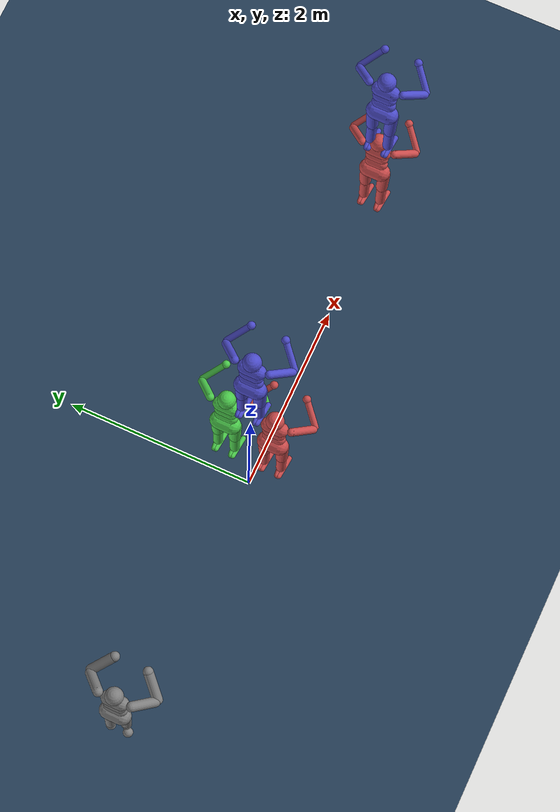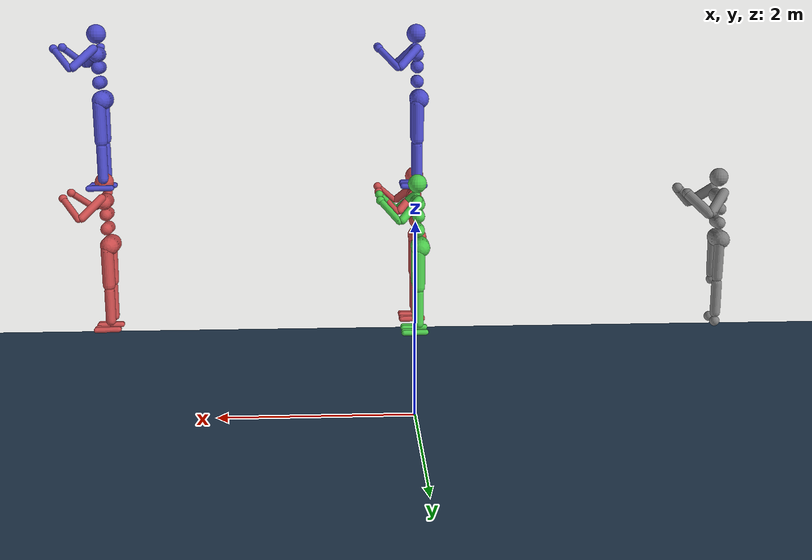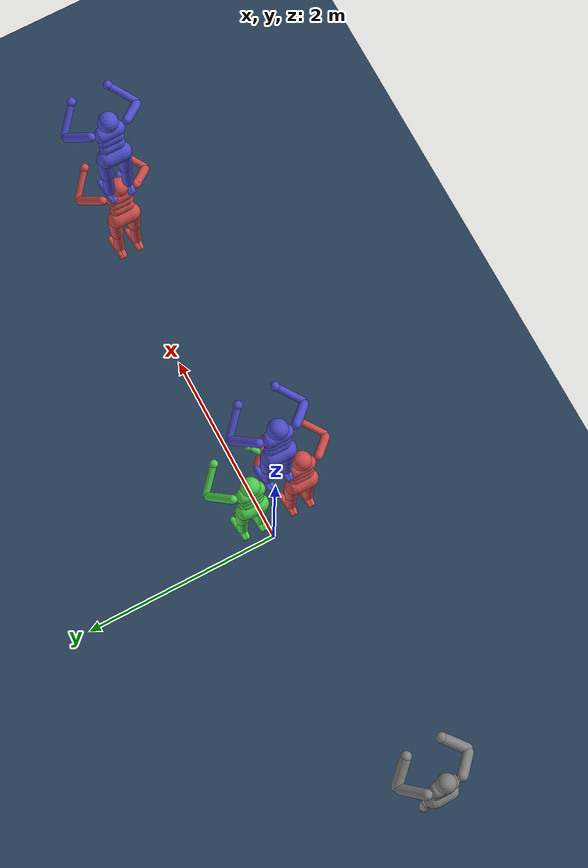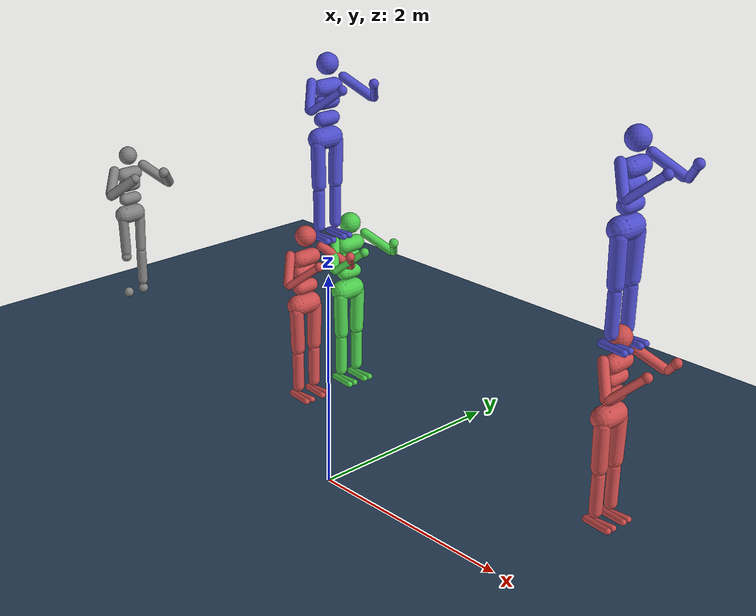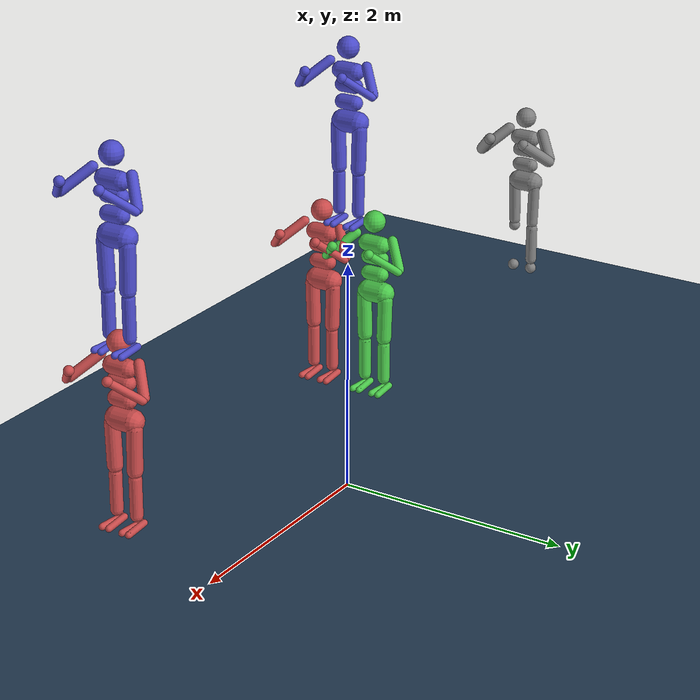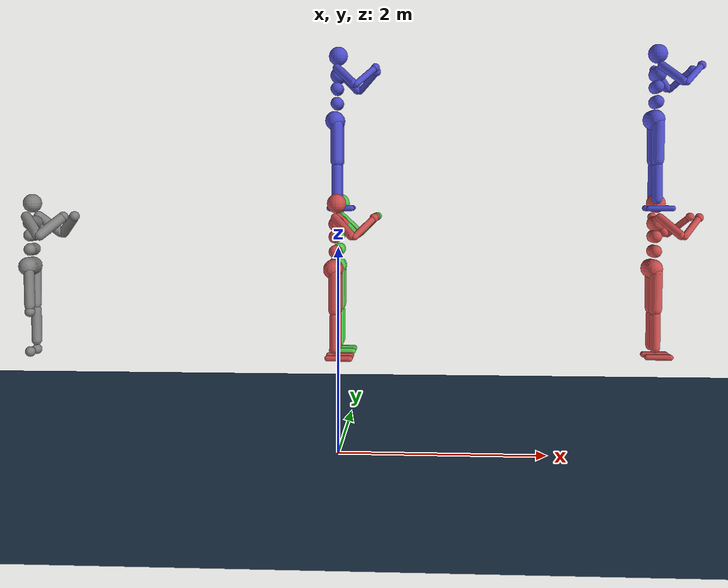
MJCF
<?xml version='1.0' encoding='utf-8'?>
<mujoco model="All_Models_Combined_Auto_Generated"><compiler angle="radian" eulerseq="xyz" /><option timestep="0.005" impratio="1" /><asset><texture type="skybox" builtin="gradient" rgb1=".3 .5 .7" rgb2="0 0 0" width="32" height="512" /><texture name="grid" type="2d" builtin="checker" width="512" height="512" rgb1=".1 .2 .3" rgb2=".2 .3 .4" /><material name="grid" texture="grid" texrepeat="1 1" texuniform="true" reflectance=".2" /><material name="red" rgba="0.8 0.3 0.3 1" /><material name="green" rgba="0.3 0.8 0.3 1" /><material name="blue" rgba="0.3 0.3 0.8 1" /><material name="pointer" rgba="0.8 0.8 0.1 1" /><material name="default_material" rgba="0.7 0.7 0.7 1" /></asset><worldbody><light pos="0 0 1.5" dir="0 0 -1" /><geom name="main_floor" type="plane" size="50 50 0.1" material="grid" condim="3" /><body name="humanoid_mount" pos="-3.0 0 0.95"><body name="humanoid_torso" pos="0 0 1.282">
      <light name="top" pos="0 0 2" mode="trackcom" />
      <camera name="back" pos="-3 0 1" xyaxes="0 -1 0 1 0 2" mode="trackcom" />
      <camera name="side" pos="0 -3 1" xyaxes="1 0 0 0 1 2" mode="trackcom" />
      <freejoint name="root" />
      <geom name="torso" fromto="0 -.07 0 0 .07 0" size=".07" type="capsule" />
      <geom name="waist_upper" fromto="-.01 -.06 -.12 -.01 .06 -.12" size=".06" type="capsule" />
      <body name="head" pos="0 0 .19">
        <geom name="head" type="sphere" size=".09" />
        <camera name="egocentric" pos=".09 0 0" xyaxes="0 -1 0 .1 0 1" fovy="80" />
      </body>
      <body name="waist_lower" pos="-.01 0 -.26">
        <geom name="waist_lower" fromto="0 -.06 0 0 .06 0" size=".06" type="capsule" />
        <joint name="abdomen_z" pos="0 0 .065" axis="0 0 1" range="-45 45" />
        <joint name="abdomen_y" pos="0 0 .065" axis="0 1 0" range="-75 30" />
        <body name="pelvis" pos="0 0 -.165">
          <joint name="abdomen_x" pos="0 0 .1" axis="1 0 0" range="-35 35" />
          <geom name="butt" fromto="-.02 -.07 0 -.02 .07 0" size=".09" type="capsule" />
          <body name="thigh_right" pos="0 -.1 -.04">
            <joint name="hip_x_right" axis="1 0 0" />
            <joint name="hip_z_right" axis="0 0 1" />
            <joint name="hip_y_right" />
            <geom name="thigh_right" fromto="0 0 0 0 .01 -.34" type="capsule" size="0.05" />
            <body name="shin_right" pos="0 .01 -.4">
              <joint name="knee_right" />
              <geom name="shin_right" size="0.05" />
              <body name="foot_right" pos="0 0 -.39">
                <joint name="ankle_y_right" />
                <joint name="ankle_x_right" axis="1 0 .5" />
                <geom name="foot1_right" size="0.05" />
                <geom name="foot2_right" size="0.05" />
              </body>
            </body>
          </body>
          <body name="thigh_left" pos="0 .1 -.04">
            <joint name="hip_x_left" axis="-1 0 0" />
            <joint name="hip_z_left" axis="0 0 -1" />
            <joint name="hip_y_left" />
            <geom name="thigh_left" fromto="0 0 0 0 -.01 -.34" type="capsule" size="0.05" />
            <body name="shin_left" pos="0 -.01 -.4">
              <joint name="knee_left" />
              <geom name="shin_left" fromto="0 0 0 0 0 -.3" type="capsule" size="0.05" />
              <body name="foot_left" pos="0 0 -.39">
                <joint name="ankle_y_left" />
                <joint name="ankle_x_left" axis="-1 0 -.5" />
                <geom name="foot1_left" size="0.05" />
                <geom name="foot2_left" size="0.05" />
              </body>
            </body>
          </body>
        </body>
      </body>
      <body name="upper_arm_right" pos="0 -.17 .06">
        <joint name="shoulder1_right" axis="2 1 1" />
        <joint name="shoulder2_right" axis="0 -1 1" />
        <geom name="upper_arm_right" fromto="0 0 0 .16 -.16 -.16" type="capsule" size="0.05" />
        <body name="lower_arm_right" pos=".18 -.18 -.18">
          <joint name="elbow_right" axis="0 -1 1" />
          <geom name="lower_arm_right" fromto=".01 .01 .01 .17 .17 .17" type="capsule" size="0.05" />
          <body name="hand_right" pos=".18 .18 .18">
            <geom name="hand_right" zaxis="1 1 1" size="0.05" />
          </body>
        </body>
      </body>
      <body name="upper_arm_left" pos="0 .17 .06">
        <joint name="shoulder1_left" axis="-2 1 -1" />
        <joint name="shoulder2_left" axis="0 -1 -1" />
        <geom name="upper_arm_left" fromto="0 0 0 .16 .16 -.16" type="capsule" size="0.05" />
        <body name="lower_arm_left" pos=".18 .18 -.18">
          <joint name="elbow_left" axis="0 -1 -1" />
          <geom name="lower_arm_left" fromto=".01 -.01 .01 .17 -.17 .17" type="capsule" size="0.05" />
          <body name="hand_left" pos=".18 -.18 .18">
            <geom name="hand_left" zaxis="1 -1 1" size="0.05" />
          </body>
        </body>
      </body>
    </body>
  </body><body name="humanoid_pyramid_mount" pos="0.0 0 0.95"><body name="humanoid_pyramid_bot1" pos="0 -0.25 1">
      <freejoint name="bot1_root" />
      <body name="bot1_torso" pos="0 0 0.282">
        <geom name="bot1_torso" fromto="0 -.07 0 0 .07 0" size=".07" type="capsule" material="red" />
        <geom name="bot1_waist_upper" fromto="-.01 -.06 -.12 -.01 .06 -.12" size=".06" type="capsule" material="red" />

        <body name="bot1_head" pos="0 0 .19">
          <geom name="bot1_head" type="sphere" size=".09" material="red" />
        </body>

        <body name="bot1_upper_arm_right" pos="0 -.17 .06">
          <joint name="bot1_shoulder1_right" type="hinge" axis="2 1 1" range="-85 60" />
          <joint name="bot1_shoulder2_right" type="hinge" axis="0 -1 1" range="-85 60" />
          <geom name="bot1_upper_arm_right" fromto="0 0 0 .16 -.16 -.16" size=".04" type="capsule" material="red" />
          <body name="bot1_lower_arm_right" pos=".18 -.18 -.18">
            <joint name="bot1_elbow_right" type="hinge" axis="0 -1 1" range="-100 50" />
            <geom name="bot1_lower_arm_right" fromto=".01 .01 .01 .17 .17 .17" size=".031" type="capsule" material="red" />
            <body name="bot1_hand_right" pos=".18 .18 .18">
              <geom name="bot1_hand_right" type="sphere" size=".04" material="red" />
            </body>
          </body>
        </body>

        <body name="bot1_upper_arm_left" pos="0 .17 .06">
          <joint name="bot1_shoulder1_left" type="hinge" axis="-2 1 -1" range="-85 60" />
          <joint name="bot1_shoulder2_left" type="hinge" axis="0 -1 -1" range="-85 60" />
          <geom name="bot1_upper_arm_left" fromto="0 0 0 .16 .16 -.16" size=".04" type="capsule" material="red" />
          <body name="bot1_lower_arm_left" pos=".18 .18 -.18">
            <joint name="bot1_elbow_left" type="hinge" axis="0 -1 -1" range="-100 50" />
            <geom name="bot1_lower_arm_left" fromto=".01 -.01 .01 .17 -.17 .17" size=".031" type="capsule" material="red" />
            <body name="bot1_hand_left" pos=".18 -.18 .18">
              <geom name="bot1_hand_left" type="sphere" size=".04" material="red" />
            </body>
          </body>
        </body>

        <body name="bot1_waist_lower" pos="-.01 0 -.26">
          <geom name="bot1_waist_lower" fromto="0 -.06 0 0 .06 0" size=".06" type="capsule" material="red" />
          <joint name="bot1_abdomen_z" pos="0 0 .065" axis="0 0 1" range="-45 45" />
          <joint name="bot1_abdomen_y" pos="0 0 .065" axis="0 1 0" range="-75 30" />
          <body name="bot1_pelvis" pos="0 0 -.165">
            <joint name="bot1_abdomen_x" pos="0 0 .1" axis="1 0 0" range="-35 35" />
            <geom name="bot1_butt" fromto="-.02 -.07 0 -.02 .07 0" size=".09" type="capsule" material="red" />

            <body name="bot1_thigh_right" pos="0 -.1 -.04">
              <joint name="bot1_hip_x_right" type="hinge" axis="1 0 0" range="-30 10" />
              <joint name="bot1_hip_z_right" type="hinge" axis="0 0 1" range="-60 35" />
              <joint name="bot1_hip_y_right" type="hinge" axis="0 1 0" range="-150 20" />
              <geom name="bot1_thigh_right" fromto="0 0 0 0 .01 -.34" size=".06" type="capsule" material="red" />
              <body name="bot1_shin_right" pos="0 .01 -.4">
                <joint name="bot1_knee_right" type="hinge" axis="0 -1 0" range="-160 2" />
                <geom name="bot1_shin_right" fromto="0 0 0 0 0 -.3" size=".049" type="capsule" material="red" />
                <body name="bot1_foot_right" pos="0 0 -.39">
                  <joint name="bot1_ankle_y_right" type="hinge" pos="0 0 .08" axis="0 1 0" range="-50 50" />
                  <joint name="bot1_ankle_x_right" type="hinge" pos="0 0 .04" axis="1 0 .5" range="-50 50" />
                  <geom name="bot1_foot1_right" fromto="-.07 -.01 0 .14 -.03 0" size=".027" type="capsule" material="red" />
                  <geom name="bot1_foot2_right" fromto="-.07 .01 0 .14 .03 0" size=".027" type="capsule" material="red" />
                </body>
              </body>
            </body>

            <body name="bot1_thigh_left" pos="0 .1 -.04">
              <joint name="bot1_hip_x_left" type="hinge" axis="-1 0 0" range="-30 10" />
              <joint name="bot1_hip_z_left" type="hinge" axis="0 0 -1" range="-60 35" />
              <joint name="bot1_hip_y_left" type="hinge" axis="0 1 0" range="-150 20" />
              <geom name="bot1_thigh_left" fromto="0 0 0 0 -.01 -.34" size=".06" type="capsule" material="red" />
              <body name="bot1_shin_left" pos="0 -.01 -.4">
                <joint name="bot1_knee_left" type="hinge" axis="0 -1 0" range="-160 2" />
                <geom name="bot1_shin_left" fromto="0 0 0 0 0 -.3" size=".049" type="capsule" material="red" />
                <body name="bot1_foot_left" pos="0 0 -.39">
                  <joint name="bot1_ankle_y_left" type="hinge" pos="0 0 .08" axis="0 1 0" range="-50 50" />
                  <joint name="bot1_ankle_x_left" type="hinge" pos="0 0 .04" axis="-1 0 -.5" range="-50 50" />
                  <geom name="bot1_foot1_left" fromto="-.07 -.01 0 .14 -.03 0" size=".027" type="capsule" material="red" />
                  <geom name="bot1_foot2_left" fromto="-.07 .01 0 .14 .03 0" size=".027" type="capsule" material="red" />
                </body>
              </body>
            </body>
          </body>
        </body>
      </body>
    </body>

    <body name="humanoid_pyramid_bot2" pos="0 0.25 1">
      <freejoint name="bot2_root" />
      <body name="bot2_torso" pos="0 0 0.282">
        <geom name="bot2_torso" fromto="0 -.07 0 0 .07 0" size=".07" type="capsule" material="green" />
        <geom name="bot2_waist_upper" fromto="-.01 -.06 -.12 -.01 .06 -.12" size=".06" type="capsule" material="green" />

        <body name="bot2_head" pos="0 0 .19">
          <geom name="bot2_head" type="sphere" size=".09" material="green" />
        </body>

        <body name="bot2_upper_arm_right" pos="0 -.17 .06">
          <joint name="bot2_shoulder1_right" type="hinge" axis="2 1 1" range="-85 60" />
          <joint name="bot2_shoulder2_right" type="hinge" axis="0 -1 1" range="-85 60" />
          <geom name="bot2_upper_arm_right" fromto="0 0 0 .16 -.16 -.16" size=".04" type="capsule" material="green" />
          <body name="bot2_lower_arm_right" pos=".18 -.18 -.18">
            <joint name="bot2_elbow_right" type="hinge" axis="0 -1 1" range="-100 50" />
            <geom name="bot2_lower_arm_right" fromto=".01 .01 .01 .17 .17 .17" size=".031" type="capsule" material="green" />
            <body name="bot2_hand_right" pos=".18 .18 .18">
              <geom name="bot2_hand_right" type="sphere" size=".04" material="green" />
            </body>
          </body>
        </body>

        <body name="bot2_upper_arm_left" pos="0 .17 .06">
          <joint name="bot2_shoulder1_left" type="hinge" axis="-2 1 -1" range="-85 60" />
          <joint name="bot2_shoulder2_left" type="hinge" axis="0 -1 -1" range="-85 60" />
          <geom name="bot2_upper_arm_left" fromto="0 0 0 .16 .16 -.16" size=".04" type="capsule" material="green" />
          <body name="bot2_lower_arm_left" pos=".18 .18 -.18">
            <joint name="bot2_elbow_left" type="hinge" axis="0 -1 -1" range="-100 50" />
            <geom name="bot2_lower_arm_left" fromto=".01 -.01 .01 .17 -.17 .17" size=".031" type="capsule" material="green" />
            <body name="bot2_hand_left" pos=".18 -.18 .18">
              <geom name="bot2_hand_left" type="sphere" size=".04" material="green" />
            </body>
          </body>
        </body>

        <body name="bot2_waist_lower" pos="-.01 0 -.26">
          <geom name="bot2_waist_lower" fromto="0 -.06 0 0 .06 0" size=".06" type="capsule" material="green" />
          <joint name="bot2_abdomen_z" pos="0 0 .065" axis="0 0 1" range="-45 45" />
          <joint name="bot2_abdomen_y" pos="0 0 .065" axis="0 1 0" range="-75 30" />
          <body name="bot2_pelvis" pos="0 0 -.165">
            <joint name="bot2_abdomen_x" pos="0 0 .1" axis="1 0 0" range="-35 35" />
            <geom name="bot2_butt" fromto="-.02 -.07 0 -.02 .07 0" size=".09" type="capsule" material="green" />

            <body name="bot2_thigh_right" pos="0 -.1 -.04">
              <joint name="bot2_hip_x_right" type="hinge" axis="1 0 0" range="-30 10" />
              <joint name="bot2_hip_z_right" type="hinge" axis="0 0 1" range="-60 35" />
              <joint name="bot2_hip_y_right" type="hinge" axis="0 1 0" range="-150 20" />
              <geom name="bot2_thigh_right" fromto="0 0 0 0 .01 -.34" size=".06" type="capsule" material="green" />
              <body name="bot2_shin_right" pos="0 .01 -.4">
                <joint name="bot2_knee_right" type="hinge" axis="0 -1 0" range="-160 2" />
                <geom name="bot2_shin_right" fromto="0 0 0 0 0 -.3" size=".049" type="capsule" material="green" />
                <body name="bot2_foot_right" pos="0 0 -.39">
                  <joint name="bot2_ankle_y_right" type="hinge" pos="0 0 .08" axis="0 1 0" range="-50 50" />
                  <joint name="bot2_ankle_x_right" type="hinge" pos="0 0 .04" axis="1 0 .5" range="-50 50" />
                  <geom name="bot2_foot1_right" fromto="-.07 -.01 0 .14 -.03 0" size=".027" type="capsule" material="green" />
                  <geom name="bot2_foot2_right" fromto="-.07 .01 0 .14 .03 0" size=".027" type="capsule" material="green" />
                </body>
              </body>
            </body>

            <body name="bot2_thigh_left" pos="0 .1 -.04">
              <joint name="bot2_hip_x_left" type="hinge" axis="-1 0 0" range="-30 10" />
              <joint name="bot2_hip_z_left" type="hinge" axis="0 0 -1" range="-60 35" />
              <joint name="bot2_hip_y_left" type="hinge" axis="0 1 0" range="-150 20" />
              <geom name="bot2_thigh_left" fromto="0 0 0 0 -.01 -.34" size=".06" type="capsule" material="green" />
              <body name="bot2_shin_left" pos="0 -.01 -.4">
                <joint name="bot2_knee_left" type="hinge" axis="0 -1 0" range="-160 2" />
                <geom name="bot2_shin_left" fromto="0 0 0 0 0 -.3" size=".049" type="capsule" material="green" />
                <body name="bot2_foot_left" pos="0 0 -.39">
                  <joint name="bot2_ankle_y_left" type="hinge" pos="0 0 .08" axis="0 1 0" range="-50 50" />
                  <joint name="bot2_ankle_x_left" type="hinge" pos="0 0 .04" axis="-1 0 -.5" range="-50 50" />
                  <geom name="bot2_foot1_left" fromto="-.07 -.01 0 .14 -.03 0" size=".027" type="capsule" material="green" />
                  <geom name="bot2_foot2_left" fromto="-.07 .01 0 .14 .03 0" size=".027" type="capsule" material="green" />
                </body>
              </body>
            </body>
          </body>
        </body>
      </body>
    </body>

    <body name="humanoid_pyramid_top" pos="0 0 2.4">
      <freejoint name="top_root" />
      <body name="top_torso" pos="0 0 0.282">
        <geom name="top_torso" fromto="0 -.07 0 0 .07 0" size=".07" type="capsule" material="blue" />
        <geom name="top_waist_upper" fromto="-.01 -.06 -.12 -.01 .06 -.12" size=".06" type="capsule" material="blue" />

        <body name="top_head" pos="0 0 .19">
          <geom name="top_head" type="sphere" size=".09" material="blue" />
        </body>

        <body name="top_upper_arm_right" pos="0 -.17 .06">
          <joint name="top_shoulder1_right" type="hinge" axis="2 1 1" range="-85 60" />
          <joint name="top_shoulder2_right" type="hinge" axis="0 -1 1" range="-85 60" />
          <geom name="top_upper_arm_right" fromto="0 0 0 .16 -.16 -.16" size=".04" type="capsule" material="blue" />
          <body name="top_lower_arm_right" pos=".18 -.18 -.18">
            <joint name="top_elbow_right" type="hinge" axis="0 -1 1" range="-100 50" />
            <geom name="top_lower_arm_right" fromto=".01 .01 .01 .17 .17 .17" size=".031" type="capsule" material="blue" />
            <body name="top_hand_right" pos=".18 .18 .18">
              <geom name="top_hand_right" type="sphere" size=".04" material="blue" />
            </body>
          </body>
        </body>

        <body name="top_upper_arm_left" pos="0 .17 .06">
          <joint name="top_shoulder1_left" type="hinge" axis="-2 1 -1" range="-85 60" />
          <joint name="top_shoulder2_left" type="hinge" axis="0 -1 -1" range="-85 60" />
          <geom name="top_upper_arm_left" fromto="0 0 0 .16 .16 -.16" size=".04" type="capsule" material="blue" />
          <body name="top_lower_arm_left" pos=".18 .18 -.18">
            <joint name="top_elbow_left" type="hinge" axis="0 -1 -1" range="-100 50" />
            <geom name="top_lower_arm_left" fromto=".01 -.01 .01 .17 -.17 .17" size=".031" type="capsule" material="blue" />
            <body name="top_hand_left" pos=".18 -.18 .18">
              <geom name="top_hand_left" type="sphere" size=".04" material="blue" />
            </body>
          </body>
        </body>

        <body name="top_waist_lower" pos="-.01 0 -.26">
          <geom name="top_waist_lower" fromto="0 -.06 0 0 .06 0" size=".06" type="capsule" material="blue" />
          <joint name="top_abdomen_z" pos="0 0 .065" axis="0 0 1" range="-45 45" />
          <joint name="top_abdomen_y" pos="0 0 .065" axis="0 1 0" range="-75 30" />
          <body name="top_pelvis" pos="0 0 -.165">
            <joint name="top_abdomen_x" pos="0 0 .1" axis="1 0 0" range="-35 35" />
            <geom name="top_butt" fromto="-.02 -.07 0 -.02 .07 0" size=".09" type="capsule" material="blue" />

            <body name="top_thigh_right" pos="0 -.1 -.04">
              <joint name="top_hip_x_right" type="hinge" axis="1 0 0" range="-30 10" />
              <joint name="top_hip_z_right" type="hinge" axis="0 0 1" range="-60 35" />
              <joint name="top_hip_y_right" type="hinge" axis="0 1 0" range="-150 20" />
              <geom name="top_thigh_right" fromto="0 0 0 0 .01 -.34" size=".06" type="capsule" material="blue" />
              <body name="top_shin_right" pos="0 .01 -.4">
                <joint name="top_knee_right" type="hinge" axis="0 -1 0" range="-160 2" />
                <geom name="top_shin_right" fromto="0 0 0 0 0 -.3" size=".049" type="capsule" material="blue" />
                <body name="top_foot_right" pos="0 0 -.39">
                  <joint name="top_ankle_y_right" type="hinge" pos="0 0 .08" axis="0 1 0" range="-50 50" />
                  <joint name="top_ankle_x_right" type="hinge" pos="0 0 .04" axis="1 0 .5" range="-50 50" />
                  <geom name="top_foot1_right" fromto="-.07 -.01 0 .14 -.03 0" size=".027" type="capsule" material="blue" />
                  <geom name="top_foot2_right" fromto="-.07 .01 0 .14 .03 0" size=".027" type="capsule" material="blue" />
                </body>
              </body>
            </body>

            <body name="top_thigh_left" pos="0 .1 -.04">
              <joint name="top_hip_x_left" type="hinge" axis="-1 0 0" range="-30 10" />
              <joint name="top_hip_z_left" type="hinge" axis="0 0 -1" range="-60 35" />
              <joint name="top_hip_y_left" type="hinge" axis="0 1 0" range="-150 20" />
              <geom name="top_thigh_left" fromto="0 0 0 0 -.01 -.34" size=".06" type="capsule" material="blue" />
              <body name="top_shin_left" pos="0 -.01 -.4">
                <joint name="top_knee_left" type="hinge" axis="0 -1 0" range="-160 2" />
                <geom name="top_shin_left" fromto="0 0 0 0 0 -.3" size=".049" type="capsule" material="blue" />
                <body name="top_foot_left" pos="0 0 -.39">
                  <joint name="top_ankle_y_left" type="hinge" pos="0 0 .08" axis="0 1 0" range="-50 50" />
                  <joint name="top_ankle_x_left" type="hinge" pos="0 0 .04" axis="-1 0 -.5" range="-50 50" />
                  <geom name="top_foot1_left" fromto="-.07 -.01 0 .14 -.03 0" size=".027" type="capsule" material="blue" />
                  <geom name="top_foot2_left" fromto="-.07 .01 0 .14 .03 0" size=".027" type="capsule" material="blue" />
                </body>
              </body>
            </body>
          </body>
        </body>
      </body>
    </body>
  </body><body name="2_humanoids_mount" pos="3.0 0 0.95"><body name="2_humanoids_bottom_shoulder_bot" pos="0 0 1">
      <freejoint name="bottom_shoulder_bot_root" />
      <body name="bottom_shoulder_bot_torso" pos="0 0 0.282">
        <geom name="bottom_shoulder_bot_torso" fromto="0 -.07 0 0 .07 0" size=".07" type="capsule" material="red" />
        <geom name="bottom_shoulder_bot_waist_upper" fromto="-.01 -.06 -.12 -.01 .06 -.12" size=".06" type="capsule" material="red" />

        <body name="bottom_shoulder_bot_head" pos="0 0 .19">
          <geom name="bottom_shoulder_bot_head" type="sphere" size=".09" material="red" />
        </body>

        <body name="bottom_shoulder_bot_upper_arm_right" pos="0 -.17 .06">
          <joint name="bottom_shoulder_bot_shoulder1_right" type="hinge" axis="2 1 1" range="-85 60" />
          <joint name="bottom_shoulder_bot_shoulder2_right" type="hinge" axis="0 -1 1" range="-85 60" />
          <geom name="bottom_shoulder_bot_upper_arm_right" fromto="0 0 0 .16 -.16 -.16" size=".04" type="capsule" material="red" />
          <body name="bottom_shoulder_bot_lower_arm_right" pos=".18 -.18 -.18">
            <joint name="bottom_shoulder_bot_elbow_right" type="hinge" axis="0 -1 1" range="-100 50" />
            <geom name="bottom_shoulder_bot_lower_arm_right" fromto=".01 .01 .01 .17 .17 .17" size=".031" type="capsule" material="red" />
            <body name="bottom_shoulder_bot_hand_right" pos=".18 .18 .18">
              <geom name="bottom_shoulder_bot_hand_right" type="sphere" size=".04" material="red" />
            </body>
          </body>
        </body>

        <body name="bottom_shoulder_bot_upper_arm_left" pos="0 .17 .06">
          <joint name="bottom_shoulder_bot_shoulder1_left" type="hinge" axis="-2 1 -1" range="-85 60" />
          <joint name="bottom_shoulder_bot_shoulder2_left" type="hinge" axis="0 -1 -1" range="-85 60" />
          <geom name="bottom_shoulder_bot_upper_arm_left" fromto="0 0 0 .16 .16 -.16" size=".04" type="capsule" material="red" />
          <body name="bottom_shoulder_bot_lower_arm_left" pos=".18 .18 -.18">
            <joint name="bottom_shoulder_bot_elbow_left" type="hinge" axis="0 -1 -1" range="-100 50" />
            <geom name="bottom_shoulder_bot_lower_arm_left" fromto=".01 -.01 .01 .17 -.17 .17" size=".031" type="capsule" material="red" />
            <body name="bottom_shoulder_bot_hand_left" pos=".18 -.18 .18">
              <geom name="bottom_shoulder_bot_hand_left" type="sphere" size=".04" material="red" />
            </body>
          </body>
        </body>

        <body name="bottom_shoulder_bot_waist_lower" pos="-.01 0 -.26">
          <geom name="bottom_shoulder_bot_waist_lower" fromto="0 -.06 0 0 .06 0" size=".06" type="capsule" material="red" />
          <joint name="bottom_shoulder_bot_abdomen_z" pos="0 0 .065" axis="0 0 1" range="-45 45" />
          <joint name="bottom_shoulder_bot_abdomen_y" pos="0 0 .065" axis="0 1 0" range="-75 30" />
          <body name="bottom_shoulder_bot_pelvis" pos="0 0 -.165">
            <joint name="bottom_shoulder_bot_abdomen_x" pos="0 0 .1" axis="1 0 0" range="-35 35" />
            <geom name="bottom_shoulder_bot_butt" fromto="-.02 -.07 0 -.02 .07 0" size=".09" type="capsule" material="red" />

            <body name="bottom_shoulder_bot_thigh_right" pos="0 -.1 -.04">
              <joint name="bottom_shoulder_bot_hip_x_right" type="hinge" axis="1 0 0" range="-30 10" />
              <joint name="bottom_shoulder_bot_hip_z_right" type="hinge" axis="0 0 1" range="-60 35" />
              <joint name="bottom_shoulder_bot_hip_y_right" type="hinge" axis="0 1 0" range="-150 20" />
              <geom name="bottom_shoulder_bot_thigh_right" fromto="0 0 0 0 .01 -.34" size=".06" type="capsule" material="red" />
              <body name="bottom_shoulder_bot_shin_right" pos="0 .01 -.4">
                <joint name="bottom_shoulder_bot_knee_right" type="hinge" axis="0 -1 0" range="-160 2" />
                <geom name="bottom_shoulder_bot_shin_right" fromto="0 0 0 0 0 -.3" size=".049" type="capsule" material="red" />
                <body name="bottom_shoulder_bot_foot_right" pos="0 0 -.39">
                  <joint name="bottom_shoulder_bot_ankle_y_right" type="hinge" pos="0 0 .08" axis="0 1 0" range="-50 50" />
                  <joint name="bottom_shoulder_bot_ankle_x_right" type="hinge" pos="0 0 .04" axis="1 0 .5" range="-50 50" />
                  <geom name="bottom_shoulder_bot_foot1_right" fromto="-.07 -.01 0 .14 -.03 0" size=".027" type="capsule" material="red" />
                  <geom name="bottom_shoulder_bot_foot2_right" fromto="-.07 .01 0 .14 .03 0" size=".027" type="capsule" material="red" />
                </body>
              </body>
            </body>

            <body name="bottom_shoulder_bot_thigh_left" pos="0 .1 -.04">
              <joint name="bottom_shoulder_bot_hip_x_left" type="hinge" axis="-1 0 0" range="-30 10" />
              <joint name="bottom_shoulder_bot_hip_z_left" type="hinge" axis="0 0 -1" range="-60 35" />
              <joint name="bottom_shoulder_bot_hip_y_left" type="hinge" axis="0 1 0" range="-150 20" />
              <geom name="bottom_shoulder_bot_thigh_left" fromto="0 0 0 0 -.01 -.34" size=".06" type="capsule" material="red" />
              <body name="bottom_shoulder_bot_shin_left" pos="0 -.01 -.4">
                <joint name="bottom_shoulder_bot_knee_left" type="hinge" axis="0 -1 0" range="-160 2" />
                <geom name="bottom_shoulder_bot_shin_left" fromto="0 0 0 0 0 -.3" size=".049" type="capsule" material="red" />
                <body name="bottom_shoulder_bot_foot_left" pos="0 0 -.39">
                  <joint name="bottom_shoulder_bot_ankle_y_left" type="hinge" pos="0 0 .08" axis="0 1 0" range="-50 50" />
                  <joint name="bottom_shoulder_bot_ankle_x_left" type="hinge" pos="0 0 .04" axis="-1 0 -.5" range="-50 50" />
                  <geom name="bottom_shoulder_bot_foot1_left" fromto="-.07 -.01 0 .14 -.03 0" size=".027" type="capsule" material="red" />
                  <geom name="bottom_shoulder_bot_foot2_left" fromto="-.07 .01 0 .14 .03 0" size=".027" type="capsule" material="red" />
                </body>
              </body>
            </body>
          </body>
        </body>
      </body>
    </body>

    <body name="2_humanoids_top_shoulder_bot" pos="0 0 2.4">
      <freejoint name="top_shoulder_bot_root" />
      <body name="top_shoulder_bot_torso" pos="0 0 0.282">
        <geom name="top_shoulder_bot_torso" fromto="0 -.07 0 0 .07 0" size=".07" type="capsule" material="blue" />
        <geom name="top_shoulder_bot_waist_upper" fromto="-.01 -.06 -.12 -.01 .06 -.12" size=".06" type="capsule" material="blue" />

        <body name="top_shoulder_bot_head" pos="0 0 .19">
          <geom name="top_shoulder_bot_head" type="sphere" size=".09" material="blue" />
        </body>

        <body name="top_shoulder_bot_upper_arm_right" pos="0 -.17 .06">
          <joint name="top_shoulder_bot_shoulder1_right" type="hinge" axis="2 1 1" range="-85 60" />
          <joint name="top_shoulder_bot_shoulder2_right" type="hinge" axis="0 -1 1" range="-85 60" />
          <geom name="top_shoulder_bot_upper_arm_right" fromto="0 0 0 .16 -.16 -.16" size=".04" type="capsule" material="blue" />
          <body name="top_shoulder_bot_lower_arm_right" pos=".18 -.18 -.18">
            <joint name="top_shoulder_bot_elbow_right" type="hinge" axis="0 -1 1" range="-100 50" />
            <geom name="top_shoulder_bot_lower_arm_right" fromto=".01 .01 .01 .17 .17 .17" size=".031" type="capsule" material="blue" />
            <body name="top_shoulder_bot_hand_right" pos=".18 .18 .18">
              <geom name="top_shoulder_bot_hand_right" type="sphere" size=".04" material="blue" />
            </body>
          </body>
        </body>

        <body name="top_shoulder_bot_upper_arm_left" pos="0 .17 .06">
          <joint name="top_shoulder_bot_shoulder1_left" type="hinge" axis="-2 1 -1" range="-85 60" />
          <joint name="top_shoulder_bot_shoulder2_left" type="hinge" axis="0 -1 -1" range="-85 60" />
          <geom name="top_shoulder_bot_upper_arm_left" fromto="0 0 0 .16 .16 -.16" size=".04" type="capsule" material="blue" />
          <body name="top_shoulder_bot_lower_arm_left" pos=".18 .18 -.18">
            <joint name="top_shoulder_bot_elbow_left" type="hinge" axis="0 -1 -1" range="-100 50" />
            <geom name="top_shoulder_bot_lower_arm_left" fromto=".01 -.01 .01 .17 -.17 .17" size=".031" type="capsule" material="blue" />
            <body name="top_shoulder_bot_hand_left" pos=".18 -.18 .18">
              <geom name="top_shoulder_bot_hand_left" type="sphere" size=".04" material="blue" />
            </body>
          </body>
        </body>

        <body name="top_shoulder_bot_waist_lower" pos="-.01 0 -.26">
          <geom name="top_shoulder_bot_waist_lower" fromto="0 -.06 0 0 .06 0" size=".06" type="capsule" material="blue" />
          <joint name="top_shoulder_bot_abdomen_z" pos="0 0 .065" axis="0 0 1" range="-45 45" />
          <joint name="top_shoulder_bot_abdomen_y" pos="0 0 .065" axis="0 1 0" range="-75 30" />
          <body name="top_shoulder_bot_pelvis" pos="0 0 -.165">
            <joint name="top_shoulder_bot_abdomen_x" pos="0 0 .1" axis="1 0 0" range="-35 35" />
            <geom name="top_shoulder_bot_butt" fromto="-.02 -.07 0 -.02 .07 0" size=".09" type="capsule" material="blue" />

            <body name="top_shoulder_bot_thigh_right" pos="0 -.1 -.04">
              <joint name="top_shoulder_bot_hip_x_right" type="hinge" axis="1 0 0" range="-30 10" />
              <joint name="top_shoulder_bot_hip_z_right" type="hinge" axis="0 0 1" range="-60 35" />
              <joint name="top_shoulder_bot_hip_y_right" type="hinge" axis="0 1 0" range="-150 20" />
              <geom name="top_shoulder_bot_thigh_right" fromto="0 0 0 0 .01 -.34" size=".06" type="capsule" material="blue" />
              <body name="top_shoulder_bot_shin_right" pos="0 .01 -.4">
                <joint name="top_shoulder_bot_knee_right" type="hinge" axis="0 -1 0" range="-160 2" />
                <geom name="top_shoulder_bot_shin_right" fromto="0 0 0 0 0 -.3" size=".049" type="capsule" material="blue" />
                <body name="top_shoulder_bot_foot_right" pos="0 0 -.39">
                  <joint name="top_shoulder_bot_ankle_y_right" type="hinge" pos="0 0 .08" axis="0 1 0" range="-50 50" />
                  <joint name="top_shoulder_bot_ankle_x_right" type="hinge" pos="0 0 .04" axis="1 0 .5" range="-50 50" />
                  <geom name="top_shoulder_bot_foot1_right" fromto="-.07 -.01 0 .14 -.03 0" size=".027" type="capsule" material="blue" />
                  <geom name="top_shoulder_bot_foot2_right" fromto="-.07 .01 0 .14 .03 0" size=".027" type="capsule" material="blue" />
                </body>
              </body>
            </body>

            <body name="top_shoulder_bot_thigh_left" pos="0 .1 -.04">
              <joint name="top_shoulder_bot_hip_x_left" type="hinge" axis="-1 0 0" range="-30 10" />
              <joint name="top_shoulder_bot_hip_z_left" type="hinge" axis="0 0 -1" range="-60 35" />
              <joint name="top_shoulder_bot_hip_y_left" type="hinge" axis="0 1 0" range="-150 20" />
              <geom name="top_shoulder_bot_thigh_left" fromto="0 0 0 0 -.01 -.34" size=".06" type="capsule" material="blue" />
              <body name="top_shoulder_bot_shin_left" pos="0 -.01 -.4">
                <joint name="top_shoulder_bot_knee_left" type="hinge" axis="0 -1 0" range="-160 2" />
                <geom name="top_shoulder_bot_shin_left" fromto="0 0 0 0 0 -.3" size=".049" type="capsule" material="blue" />
                <body name="top_shoulder_bot_foot_left" pos="0 0 -.39">
                  <joint name="top_shoulder_bot_ankle_y_left" type="hinge" pos="0 0 .08" axis="0 1 0" range="-50 50" />
                  <joint name="top_shoulder_bot_ankle_x_left" type="hinge" pos="0 0 .04" axis="-1 0 -.5" range="-50 50" />
                  <geom name="top_shoulder_bot_foot1_left" fromto="-.07 -.01 0 .14 -.03 0" size=".027" type="capsule" material="blue" />
                  <geom name="top_shoulder_bot_foot2_left" fromto="-.07 .01 0 .14 .03 0" size=".027" type="capsule" material="blue" />
                </body>
              </body>
            </body>
          </body>
        </body>
      </body>
    </body>
  </body></worldbody></mujoco>
